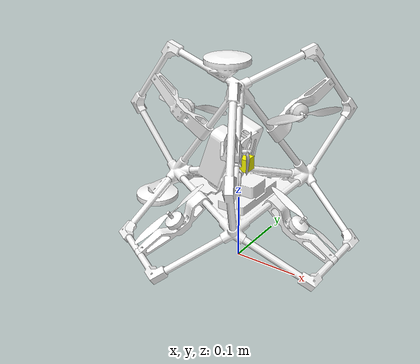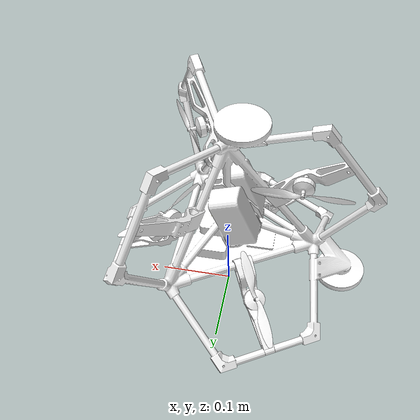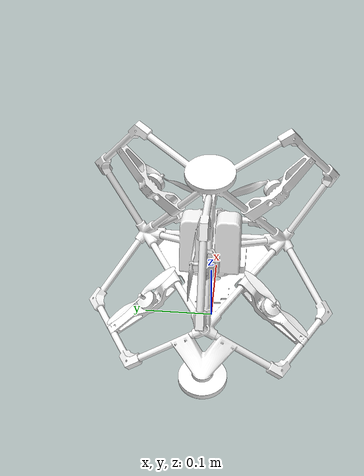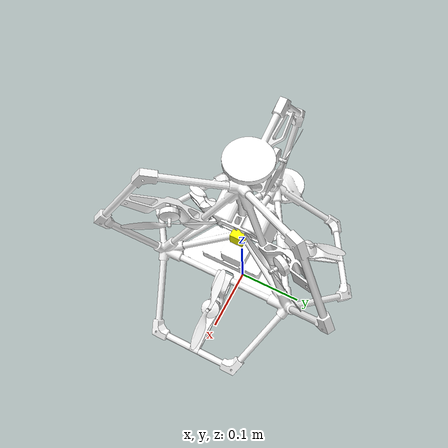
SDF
<sdf version="1.7">
 <world name="omnicopter_runway">
  <plugin filename="libignition-gazebo-physics-system.so" name="ignition::gazebo::systems::Physics"/>
  <plugin filename="ignition-gazebo-sensors-system" name="ignition::gazebo::systems::Sensors">
   <render_engine>ogre2</render_engine>
  </plugin>
  <plugin filename="libignition-gazebo-user-commands-system.so" name="ignition::gazebo::systems::UserCommands"/>
  <plugin filename="libignition-gazebo-scene-broadcaster-system.so" name="ignition::gazebo::systems::SceneBroadcaster"/>
  <plugin filename="ignition-gazebo-air-pressure-system" name="ignition::gazebo::systems::AirPressure"/>
  <plugin filename="ignition-gazebo-altimeter-system" name="ignition::gazebo::systems::Altimeter"/>
  <plugin filename="ignition-gazebo-imu-system" name="ignition::gazebo::systems::Imu"/>
  <plugin filename="ignition-gazebo-magnetometer-system" name="ignition::gazebo::systems::Magnetometer"/>
  <plugin filename="ignition-gazebo-forcetorque-system" name="ignition::gazebo::systems::ForceTorque"/>
  <scene><ambient>1.0 1.0 1.0</ambient><background>0.8 0.8 0.8</background></scene>
  <light type="directional" name="sun">
   <pose>0 0 10 0 0 0</pose>
   <diffuse>0.8 0.8 0.8 1</diffuse>
   <specular>0.8 0.8 0.8 1</specular>
   <attenuation>
    <range>1000</range>
    <constant>0.9</constant>
    <linear>0.01</linear>
    <quadratic>0.001</quadratic>
   </attenuation>
   <direction>-0.5 0.1 -0.9</direction>
  </light>
  <include><pose>0 0 0.15 0 0 0</pose><uri>model://omnicopter</uri></include>
 </world>
</sdf>
